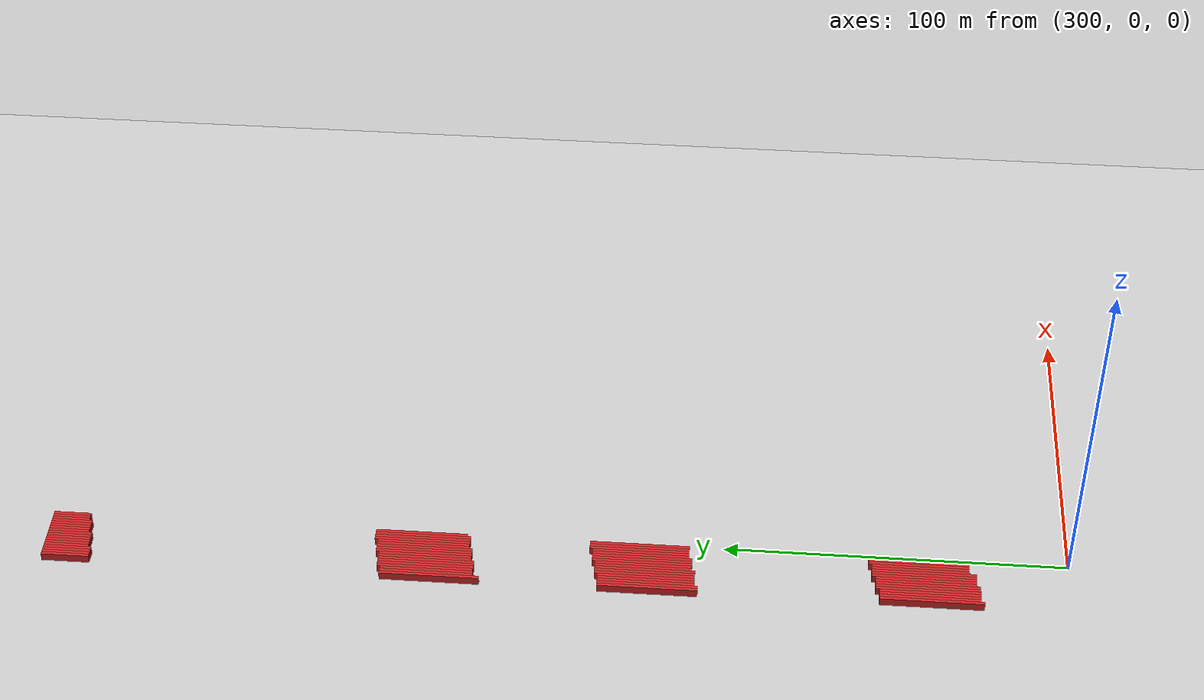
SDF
<sdf version="1.4">
 <world name="1_wall">
  <model name="ground_plane">
   <static>1</static>
   <link name="link">
    <collision name="collision">
     <geometry><plane><normal>0 0 1</normal><size>1000 1000</size></plane></geometry>
     <surface><friction><ode><mu>100</mu><mu2>50</mu2></ode></friction></surface>
    </collision>
    <visual name="visual">
     <cast_shadows>0</cast_shadows>
     <geometry><plane><normal>0 0 1</normal><size>10000 10000</size></plane></geometry>
     <material>
      <script><uri>file://media/materials/scripts/gazebo.material</uri><name>Gazebo/Grey</name></script>
     </material>
    </visual>
    <velocity_decay><linear>0</linear><angular>0</angular></velocity_decay>
   </link>
  </model>
  <model name="Wall_923">
   <static>1</static>
   <link name="Wall_923">
    <collision name="Wall_Collision_923">
     <geometry><box><size>29.0 1.0 2.5</size></box></geometry>
     <pose>0 0 1.25 0 -0 0</pose>
    </collision>
    <visual name="Wall_Visual_923">
     <pose>0 0 1.25 0 -0 0</pose>
     <geometry><box><size>29.0 1.0 2.5</size></box></geometry>
     <material>
      <script><uri>file://media/materials/scripts/gazebo.material</uri><name>Gazebo/Red</name></script>
     </material>
    </visual>
    <velocity_decay><linear>0</linear><angular>0</angular></velocity_decay>
    <pose>280.5 121.5 0 0 0 1.5707963267948966</pose>
   </link>
  </model>
  <model name="Wall_924">
   <static>1</static>
   <link name="Wall_924">
    <collision name="Wall_Collision_924">
     <geometry><box><size>29.0 1.0 2.5</size></box></geometry>
     <pose>0 0 1.25 0 -0 0</pose>
    </collision>
    <visual name="Wall_Visual_924">
     <pose>0 0 1.25 0 -0 0</pose>
     <geometry><box><size>29.0 1.0 2.5</size></box></geometry>
     <material>
      <script><uri>file://media/materials/scripts/gazebo.material</uri><name>Gazebo/Red</name></script>
     </material>
    </visual>
    <velocity_decay><linear>0</linear><angular>0</angular></velocity_decay>
    <pose>280.5 184.5 0 0 0 1.5707963267948966</pose>
   </link>
  </model>
  <model name="Wall_925">
   <static>1</static>
   <link name="Wall_925">
    <collision name="Wall_Collision_925">
     <geometry><box><size>14.0 1.0 2.5</size></box></geometry>
     <pose>0 0 1.25 0 -0 0</pose>
    </collision>
    <visual name="Wall_Visual_925">
     <pose>0 0 1.25 0 -0 0</pose>
     <geometry><box><size>14.0 1.0 2.5</size></box></geometry>
     <material>
      <script><uri>file://media/materials/scripts/gazebo.material</uri><name>Gazebo/Red</name></script>
     </material>
    </visual>
    <velocity_decay><linear>0</linear><angular>0</angular></velocity_decay>
    <pose>280.5 291.0 0 0 0 1.5707963267948966</pose>
   </link>
  </model>
  <model name="Wall_926">
   <static>1</static>
   <link name="Wall_926">
    <collision name="Wall_Collision_926">
     <geometry><box><size>30.0 1.0 2.5</size></box></geometry>
     <pose>0 0 1.25 0 -0 0</pose>
    </collision>
    <visual name="Wall_Visual_926">
     <pose>0 0 1.25 0 -0 0</pose>
     <geometry><box><size>30.0 1.0 2.5</size></box></geometry>
     <material>
      <script><uri>file://media/materials/scripts/gazebo.material</uri><name>Gazebo/Red</name></script>
     </material>
    </visual>
    <velocity_decay><linear>0</linear><angular>0</angular></velocity_decay>
    <pose>281.5 40.0 0 0 0 1.5707963267948966</pose>
   </link>
  </model>
  <model name="Wall_927">
   <static>1</static>
   <link name="Wall_927">
    <collision name="Wall_Collision_927">
     <geometry><box><size>29.0 1.0 2.5</size></box></geometry>
     <pose>0 0 1.25 0 -0 0</pose>
    </collision>
    <visual name="Wall_Visual_927">
     <pose>0 0 1.25 0 -0 0</pose>
     <geometry><box><size>29.0 1.0 2.5</size></box></geometry>
     <material>
      <script><uri>file://media/materials/scripts/gazebo.material</uri><name>Gazebo/Red</name></script>
     </material>
    </visual>
    <velocity_decay><linear>0</linear><angular>0</angular></velocity_decay>
    <pose>281.5 121.5 0 0 0 1.5707963267948966</pose>
   </link>
  </model>
  <model name="Wall_928">
   <static>1</static>
   <link name="Wall_928">
    <collision name="Wall_Collision_928">
     <geometry><box><size>27.0 1.0 2.5</size></box></geometry>
     <pose>0 0 1.25 0 -0 0</pose>
    </collision>
    <visual name="Wall_Visual_928">
     <pose>0 0 1.25 0 -0 0</pose>
     <geometry><box><size>27.0 1.0 2.5</size></box></geometry>
     <material>
      <script><uri>file://media/materials/scripts/gazebo.material</uri><name>Gazebo/Red</name></script>
     </material>
    </visual>
    <velocity_decay><linear>0</linear><angular>0</angular></velocity_decay>
    <pose>281.5 185.5 0 0 0 1.5707963267948966</pose>
   </link>
  </model>
  <model name="Wall_929">
   <static>1</static>
   <link name="Wall_929">
    <collision name="Wall_Collision_929">
     <geometry><box><size>14.0 1.0 2.5</size></box></geometry>
     <pose>0 0 1.25 0 -0 0</pose>
    </collision>
    <visual name="Wall_Visual_929">
     <pose>0 0 1.25 0 -0 0</pose>
     <geometry><box><size>14.0 1.0 2.5</size></box></geometry>
     <material>
      <script><uri>file://media/materials/scripts/gazebo.material</uri><name>Gazebo/Red</name></script>
     </material>
    </visual>
    <velocity_decay><linear>0</linear><angular>0</angular></velocity_decay>
    <pose>281.5 291.0 0 0 0 1.5707963267948966</pose>
   </link>
  </model>
  <model name="Wall_930">
   <static>1</static>
   <link name="Wall_930">
    <collision name="Wall_Collision_930">
     <geometry><box><size>29.0 1.0 2.5</size></box></geometry>
     <pose>0 0 1.25 0 -0 0</pose>
    </collision>
    <visual name="Wall_Visual_930">
     <pose>0 0 1.25 0 -0 0</pose>
     <geometry><box><size>29.0 1.0 2.5</size></box></geometry>
     <material>
      <script><uri>file://media/materials/scripts/gazebo.material</uri><name>Gazebo/Red</name></script>
     </material>
    </visual>
    <velocity_decay><linear>0</linear><angular>0</angular></velocity_decay>
    <pose>282.5 40.5 0 0 0 1.5707963267948966</pose>
   </link>
  </model>
  <model name="Wall_931">
   <static>1</static>
   <link name="Wall_931">
    <collision name="Wall_Collision_931">
     <geometry><box><size>28.0 1.0 2.5</size></box></geometry>
     <pose>0 0 1.25 0 -0 0</pose>
    </collision>
    <visual name="Wall_Visual_931">
     <pose>0 0 1.25 0 -0 0</pose>
     <geometry><box><size>28.0 1.0 2.5</size></box></geometry>
     <material>
      <script><uri>file://media/materials/scripts/gazebo.material</uri><name>Gazebo/Red</name></script>
     </material>
    </visual>
    <velocity_decay><linear>0</linear><angular>0</angular></velocity_decay>
    <pose>282.5 122.0 0 0 0 1.5707963267948966</pose>
   </link>
  </model>
  <model name="Wall_932">
   <static>1</static>
   <link name="Wall_932">
    <collision name="Wall_Collision_932">
     <geometry><box><size>27.0 1.0 2.5</size></box></geometry>
     <pose>0 0 1.25 0 -0 0</pose>
    </collision>
    <visual name="Wall_Visual_932">
     <pose>0 0 1.25 0 -0 0</pose>
     <geometry><box><size>27.0 1.0 2.5</size></box></geometry>
     <material>
      <script><uri>file://media/materials/scripts/gazebo.material</uri><name>Gazebo/Red</name></script>
     </material>
    </visual>
    <velocity_decay><linear>0</linear><angular>0</angular></velocity_decay>
    <pose>282.5 185.5 0 0 0 1.5707963267948966</pose>
   </link>
  </model>
  <model name="Wall_933">
   <static>1</static>
   <link name="Wall_933">
    <collision name="Wall_Collision_933">
     <geometry><box><size>14.0 1.0 2.5</size></box></geometry>
     <pose>0 0 1.25 0 -0 0</pose>
    </collision>
    <visual name="Wall_Visual_933">
     <pose>0 0 1.25 0 -0 0</pose>
     <geometry><box><size>14.0 1.0 2.5</size></box></geometry>
     <material>
      <script><uri>file://media/materials/scripts/gazebo.material</uri><name>Gazebo/Red</name></script>
     </material>
    </visual>
    <velocity_decay><linear>0</linear><angular>0</angular></velocity_decay>
    <pose>282.5 291.0 0 0 0 1.5707963267948966</pose>
   </link>
  </model>
  <model name="Wall_934">
   <static>1</static>
   <link name="Wall_934">
    <collision name="Wall_Collision_934">
     <geometry><box><size>29.0 1.0 2.5</size></box></geometry>
     <pose>0 0 1.25 0 -0 0</pose>
    </collision>
    <visual name="Wall_Visual_934">
     <pose>0 0 1.25 0 -0 0</pose>
     <geometry><box><size>29.0 1.0 2.5</size></box></geometry>
     <material>
      <script><uri>file://media/materials/scripts/gazebo.material</uri><name>Gazebo/Red</name></script>
     </material>
    </visual>
    <velocity_decay><linear>0</linear><angular>0</angular></velocity_decay>
    <pose>283.5 40.5 0 0 0 1.5707963267948966</pose>
   </link>
  </model>
  <model name="Wall_935">
   <static>1</static>
   <link name="Wall_935">
    <collision name="Wall_Collision_935">
     <geometry><box><size>28.0 1.0 2.5</size></box></geometry>
     <pose>0 0 1.25 0 -0 0</pose>
    </collision>
    <visual name="Wall_Visual_935">
     <pose>0 0 1.25 0 -0 0</pose>
     <geometry><box><size>28.0 1.0 2.5</size></box></geometry>
     <material>
      <script><uri>file://media/materials/scripts/gazebo.material</uri><name>Gazebo/Red</name></script>
     </material>
    </visual>
    <velocity_decay><linear>0</linear><angular>0</angular></velocity_decay>
    <pose>283.5 122.0 0 0 0 1.5707963267948966</pose>
   </link>
  </model>
  <model name="Wall_936">
   <static>1</static>
   <link name="Wall_936">
    <collision name="Wall_Collision_936">
     <geometry><box><size>28.0 1.0 2.5</size></box></geometry>
     <pose>0 0 1.25 0 -0 0</pose>
    </collision>
    <visual name="Wall_Visual_936">
     <pose>0 0 1.25 0 -0 0</pose>
     <geometry><box><size>28.0 1.0 2.5</size></box></geometry>
     <material>
      <script><uri>file://media/materials/scripts/gazebo.material</uri><name>Gazebo/Red</name></script>
     </material>
    </visual>
    <velocity_decay><linear>0</linear><angular>0</angular></velocity_decay>
    <pose>283.5 186.0 0 0 0 1.5707963267948966</pose>
   </link>
  </model>
  <model name="Wall_937">
   <static>1</static>
   <link name="Wall_937">
    <collision name="Wall_Collision_937">
     <geometry><box><size>14.0 1.0 2.5</size></box></geometry>
     <pose>0 0 1.25 0 -0 0</pose>
    </collision>
    <visual name="Wall_Visual_937">
     <pose>0 0 1.25 0 -0 0</pose>
     <geometry><box><size>14.0 1.0 2.5</size></box></geometry>
     <material>
      <script><uri>file://media/materials/scripts/gazebo.material</uri><name>Gazebo/Red</name></script>
     </material>
    </visual>
    <velocity_decay><linear>0</linear><angular>0</angular></velocity_decay>
    <pose>283.5 291.0 0 0 0 1.5707963267948966</pose>
   </link>
  </model>
  <model name="Wall_938">
   <static>1</static>
   <link name="Wall_938">
    <collision name="Wall_Collision_938">
     <geometry><box><size>29.0 1.0 2.5</size></box></geometry>
     <pose>0 0 1.25 0 -0 0</pose>
    </collision>
    <visual name="Wall_Visual_938">
     <pose>0 0 1.25 0 -0 0</pose>
     <geometry><box><size>29.0 1.0 2.5</size></box></geometry>
     <material>
      <script><uri>file://media/materials/scripts/gazebo.material</uri><name>Gazebo/Red</name></script>
     </material>
    </visual>
    <velocity_decay><linear>0</linear><angular>0</angular></velocity_decay>
    <pose>284.5 40.5 0 0 0 1.5707963267948966</pose>
   </link>
  </model>
  <model name="Wall_939">
   <static>1</static>
   <link name="Wall_939">
    <collision name="Wall_Collision_939">
     <geometry><box><size>28.0 1.0 2.5</size></box></geometry>
     <pose>0 0 1.25 0 -0 0</pose>
    </collision>
    <visual name="Wall_Visual_939">
     <pose>0 0 1.25 0 -0 0</pose>
     <geometry><box><size>28.0 1.0 2.5</size></box></geometry>
     <material>
      <script><uri>file://media/materials/scripts/gazebo.material</uri><name>Gazebo/Red</name></script>
     </material>
    </visual>
    <velocity_decay><linear>0</linear><angular>0</angular></velocity_decay>
    <pose>284.5 122.0 0 0 0 1.5707963267948966</pose>
   </link>
  </model>
  <model name="Wall_940">
   <static>1</static>
   <link name="Wall_940">
    <collision name="Wall_Collision_940">
     <geometry><box><size>28.0 1.0 2.5</size></box></geometry>
     <pose>0 0 1.25 0 -0 0</pose>
    </collision>
    <visual name="Wall_Visual_940">
     <pose>0 0 1.25 0 -0 0</pose>
     <geometry><box><size>28.0 1.0 2.5</size></box></geometry>
     <material>
      <script><uri>file://media/materials/scripts/gazebo.material</uri><name>Gazebo/Red</name></script>
     </material>
    </visual>
    <velocity_decay><linear>0</linear><angular>0</angular></velocity_decay>
    <pose>284.5 186.0 0 0 0 1.5707963267948966</pose>
   </link>
  </model>
  <model name="Wall_941">
   <static>1</static>
   <link name="Wall_941">
    <collision name="Wall_Collision_941">
     <geometry><box><size>13.0 1.0 2.5</size></box></geometry>
     <pose>0 0 1.25 0 -0 0</pose>
    </collision>
    <visual name="Wall_Visual_941">
     <pose>0 0 1.25 0 -0 0</pose>
     <geometry><box><size>13.0 1.0 2.5</size></box></geometry>
     <material>
      <script><uri>file://media/materials/scripts/gazebo.material</uri><name>Gazebo/Red</name></script>
     </material>
    </visual>
    <velocity_decay><linear>0</linear><angular>0</angular></velocity_decay>
    <pose>284.5 291.5 0 0 0 1.5707963267948966</pose>
   </link>
  </model>
  <model name="Wall_942">
   <static>1</static>
   <link name="Wall_942">
    <collision name="Wall_Collision_942">
     <geometry><box><size>30.0 1.0 2.5</size></box></geometry>
     <pose>0 0 1.25 0 -0 0</pose>
    </collision>
    <visual name="Wall_Visual_942">
     <pose>0 0 1.25 0 -0 0</pose>
     <geometry><box><size>30.0 1.0 2.5</size></box></geometry>
     <material>
      <script><uri>file://media/materials/scripts/gazebo.material</uri><name>Gazebo/Red</name></script>
     </material>
    </visual>
    <velocity_decay><linear>0</linear><angular>0</angular></velocity_decay>
    <pose>285.5 41.0 0 0 0 1.5707963267948966</pose>
   </link>
  </model>
  <model name="Wall_943">
   <static>1</static>
   <link name="Wall_943">
    <collision name="Wall_Collision_943">
     <geometry><box><size>29.0 1.0 2.5</size></box></geometry>
     <pose>0 0 1.25 0 -0 0</pose>
    </collision>
    <visual name="Wall_Visual_943">
     <pose>0 0 1.25 0 -0 0</pose>
     <geometry><box><size>29.0 1.0 2.5</size></box></geometry>
     <material>
      <script><uri>file://media/materials/scripts/gazebo.material</uri><name>Gazebo/Red</name></script>
     </material>
    </visual>
    <velocity_decay><linear>0</linear><angular>0</angular></velocity_decay>
    <pose>285.5 122.5 0 0 0 1.5707963267948966</pose>
   </link>
  </model>
  <model name="Wall_944">
   <static>1</static>
   <link name="Wall_944">
    <collision name="Wall_Collision_944">
     <geometry><box><size>28.0 1.0 2.5</size></box></geometry>
     <pose>0 0 1.25 0 -0 0</pose>
    </collision>
    <visual name="Wall_Visual_944">
     <pose>0 0 1.25 0 -0 0</pose>
     <geometry><box><size>28.0 1.0 2.5</size></box></geometry>
     <material>
      <script><uri>file://media/materials/scripts/gazebo.material</uri><name>Gazebo/Red</name></script>
     </material>
    </visual>
    <velocity_decay><linear>0</linear><angular>0</angular></velocity_decay>
    <pose>285.5 186.0 0 0 0 1.5707963267948966</pose>
   </link>
  </model>
  <model name="Wall_945">
   <static>1</static>
   <link name="Wall_945">
    <collision name="Wall_Collision_945">
     <geometry><box><size>13.0 1.0 2.5</size></box></geometry>
     <pose>0 0 1.25 0 -0 0</pose>
    </collision>
    <visual name="Wall_Visual_945">
     <pose>0 0 1.25 0 -0 0</pose>
     <geometry><box><size>13.0 1.0 2.5</size></box></geometry>
     <material>
      <script><uri>file://media/materials/scripts/gazebo.material</uri><name>Gazebo/Red</name></script>
     </material>
    </visual>
    <velocity_decay><linear>0</linear><angular>0</angular></velocity_decay>
    <pose>285.5 291.5 0 0 0 1.5707963267948966</pose>
   </link>
  </model>
  <model name="Wall_946">
   <static>1</static>
   <link name="Wall_946">
    <collision name="Wall_Collision_946">
     <geometry><box><size>30.0 1.0 2.5</size></box></geometry>
     <pose>0 0 1.25 0 -0 0</pose>
    </collision>
    <visual name="Wall_Visual_946">
     <pose>0 0 1.25 0 -0 0</pose>
     <geometry><box><size>30.0 1.0 2.5</size></box></geometry>
     <material>
      <script><uri>file://media/materials/scripts/gazebo.material</uri><name>Gazebo/Red</name></script>
     </material>
    </visual>
    <velocity_decay><linear>0</linear><angular>0</angular></velocity_decay>
    <pose>286.5 41.0 0 0 0 1.5707963267948966</pose>
   </link>
  </model>
  <model name="Wall_947">
   <static>1</static>
   <link name="Wall_947">
    <collision name="Wall_Collision_947">
     <geometry><box><size>29.0 1.0 2.5</size></box></geometry>
     <pose>0 0 1.25 0 -0 0</pose>
    </collision>
    <visual name="Wall_Visual_947">
     <pose>0 0 1.25 0 -0 0</pose>
     <geometry><box><size>29.0 1.0 2.5</size></box></geometry>
     <material>
      <script><uri>file://media/materials/scripts/gazebo.material</uri><name>Gazebo/Red</name></script>
     </material>
    </visual>
    <velocity_decay><linear>0</linear><angular>0</angular></velocity_decay>
    <pose>286.5 122.5 0 0 0 1.5707963267948966</pose>
   </link>
  </model>
  <model name="Wall_948">
   <static>1</static>
   <link name="Wall_948">
    <collision name="Wall_Collision_948">
     <geometry><box><size>28.0 1.0 2.5</size></box></geometry>
     <pose>0 0 1.25 0 -0 0</pose>
    </collision>
    <visual name="Wall_Visual_948">
     <pose>0 0 1.25 0 -0 0</pose>
     <geometry><box><size>28.0 1.0 2.5</size></box></geometry>
     <material>
      <script><uri>file://media/materials/scripts/gazebo.material</uri><name>Gazebo/Red</name></script>
     </material>
    </visual>
    <velocity_decay><linear>0</linear><angular>0</angular></velocity_decay>
    <pose>286.5 186.0 0 0 0 1.5707963267948966</pose>
   </link>
  </model>
  <model name="Wall_949">
   <static>1</static>
   <link name="Wall_949">
    <collision name="Wall_Collision_949">
     <geometry><box><size>13.0 1.0 2.5</size></box></geometry>
     <pose>0 0 1.25 0 -0 0</pose>
    </collision>
    <visual name="Wall_Visual_949">
     <pose>0 0 1.25 0 -0 0</pose>
     <geometry><box><size>13.0 1.0 2.5</size></box></geometry>
     <material>
      <script><uri>file://media/materials/scripts/gazebo.material</uri><name>Gazebo/Red</name></script>
     </material>
    </visual>
    <velocity_decay><linear>0</linear><angular>0</angular></velocity_decay>
    <pose>286.5 291.5 0 0 0 1.5707963267948966</pose>
   </link>
  </model>
  <model name="Wall_950">
   <static>1</static>
   <link name="Wall_950">
    <collision name="Wall_Collision_950">
     <geometry><box><size>30.0 1.0 2.5</size></box></geometry>
     <pose>0 0 1.25 0 -0 0</pose>
    </collision>
    <visual name="Wall_Visual_950">
     <pose>0 0 1.25 0 -0 0</pose>
     <geometry><box><size>30.0 1.0 2.5</size></box></geometry>
     <material>
      <script><uri>file://media/materials/scripts/gazebo.material</uri><name>Gazebo/Red</name></script>
     </material>
    </visual>
    <velocity_decay><linear>0</linear><angular>0</angular></velocity_decay>
    <pose>287.5 41.0 0 0 0 1.5707963267948966</pose>
   </link>
  </model>
  <model name="Wall_951">
   <static>1</static>
   <link name="Wall_951">
    <collision name="Wall_Collision_951">
     <geometry><box><size>29.0 1.0 2.5</size></box></geometry>
     <pose>0 0 1.25 0 -0 0</pose>
    </collision>
    <visual name="Wall_Visual_951">
     <pose>0 0 1.25 0 -0 0</pose>
     <geometry><box><size>29.0 1.0 2.5</size></box></geometry>
     <material>
      <script><uri>file://media/materials/scripts/gazebo.material</uri><name>Gazebo/Red</name></script>
     </material>
    </visual>
    <velocity_decay><linear>0</linear><angular>0</angular></velocity_decay>
    <pose>287.5 122.5 0 0 0 1.5707963267948966</pose>
   </link>
  </model>
  <model name="Wall_952">
   <static>1</static>
   <link name="Wall_952">
    <collision name="Wall_Collision_952">
     <geometry><box><size>27.0 1.0 2.5</size></box></geometry>
     <pose>0 0 1.25 0 -0 0</pose>
    </collision>
    <visual name="Wall_Visual_952">
     <pose>0 0 1.25 0 -0 0</pose>
     <geometry><box><size>27.0 1.0 2.5</size></box></geometry>
     <material>
      <script><uri>file://media/materials/scripts/gazebo.material</uri><name>Gazebo/Red</name></script>
     </material>
    </visual>
    <velocity_decay><linear>0</linear><angular>0</angular></velocity_decay>
    <pose>287.5 186.5 0 0 0 1.5707963267948966</pose>
   </link>
  </model>
  <model name="Wall_953">
   <static>1</static>
   <link name="Wall_953">
    <collision name="Wall_Collision_953">
     <geometry><box><size>13.0 1.0 2.5</size></box></geometry>
     <pose>0 0 1.25 0 -0 0</pose>
    </collision>
    <visual name="Wall_Visual_953">
     <pose>0 0 1.25 0 -0 0</pose>
     <geometry><box><size>13.0 1.0 2.5</size></box></geometry>
     <material>
      <script><uri>file://media/materials/scripts/gazebo.material</uri><name>Gazebo/Red</name></script>
     </material>
    </visual>
    <velocity_decay><linear>0</linear><angular>0</angular></velocity_decay>
    <pose>287.5 291.5 0 0 0 1.5707963267948966</pose>
   </link>
  </model>
  <model name="Wall_954">
   <static>1</static>
   <link name="Wall_954">
    <collision name="Wall_Collision_954">
     <geometry><box><size>29.0 1.0 2.5</size></box></geometry>
     <pose>0 0 1.25 0 -0 0</pose>
    </collision>
    <visual name="Wall_Visual_954">
     <pose>0 0 1.25 0 -0 0</pose>
     <geometry><box><size>29.0 1.0 2.5</size></box></geometry>
     <material>
      <script><uri>file://media/materials/scripts/gazebo.material</uri><name>Gazebo/Red</name></script>
     </material>
    </visual>
    <velocity_decay><linear>0</linear><angular>0</angular></velocity_decay>
    <pose>288.5 41.5 0 0 0 1.5707963267948966</pose>
   </link>
  </model>
  <model name="Wall_955">
   <static>1</static>
   <link name="Wall_955">
    <collision name="Wall_Collision_955">
     <geometry><box><size>28.0 1.0 2.5</size></box></geometry>
     <pose>0 0 1.25 0 -0 0</pose>
    </collision>
    <visual name="Wall_Visual_955">
     <pose>0 0 1.25 0 -0 0</pose>
     <geometry><box><size>28.0 1.0 2.5</size></box></geometry>
     <material>
      <script><uri>file://media/materials/scripts/gazebo.material</uri><name>Gazebo/Red</name></script>
     </material>
    </visual>
    <velocity_decay><linear>0</linear><angular>0</angular></velocity_decay>
    <pose>288.5 123.0 0 0 0 1.5707963267948966</pose>
   </link>
  </model>
  <model name="Wall_956">
   <static>1</static>
   <link name="Wall_956">
    <collision name="Wall_Collision_956">
     <geometry><box><size>27.0 1.0 2.5</size></box></geometry>
     <pose>0 0 1.25 0 -0 0</pose>
    </collision>
    <visual name="Wall_Visual_956">
     <pose>0 0 1.25 0 -0 0</pose>
     <geometry><box><size>27.0 1.0 2.5</size></box></geometry>
     <material>
      <script><uri>file://media/materials/scripts/gazebo.material</uri><name>Gazebo/Red</name></script>
     </material>
    </visual>
    <velocity_decay><linear>0</linear><angular>0</angular></velocity_decay>
    <pose>288.5 186.5 0 0 0 1.5707963267948966</pose>
   </link>
  </model>
  <model name="Wall_957">
   <static>1</static>
   <link name="Wall_957">
    <collision name="Wall_Collision_957">
     <geometry><box><size>13.0 1.0 2.5</size></box></geometry>
     <pose>0 0 1.25 0 -0 0</pose>
    </collision>
    <visual name="Wall_Visual_957">
     <pose>0 0 1.25 0 -0 0</pose>
     <geometry><box><size>13.0 1.0 2.5</size></box></geometry>
     <material>
      <script><uri>file://media/materials/scripts/gazebo.material</uri><name>Gazebo/Red</name></script>
     </material>
    </visual>
    <velocity_decay><linear>0</linear><angular>0</angular></velocity_decay>
    <pose>288.5 291.5 0 0 0 1.5707963267948966</pose>
   </link>
  </model>
  <model name="Wall_958">
   <static>1</static>
   <link name="Wall_958">
    <collision name="Wall_Collision_958">
     <geometry><box><size>29.0 1.0 2.5</size></box></geometry>
     <pose>0 0 1.25 0 -0 0</pose>
    </collision>
    <visual name="Wall_Visual_958">
     <pose>0 0 1.25 0 -0 0</pose>
     <geometry><box><size>29.0 1.0 2.5</size></box></geometry>
     <material>
      <script><uri>file://media/materials/scripts/gazebo.material</uri><name>Gazebo/Red</name></script>
     </material>
    </visual>
    <velocity_decay><linear>0</linear><angular>0</angular></velocity_decay>
    <pose>289.5 41.5 0 0 0 1.5707963267948966</pose>
   </link>
  </model>
  <model name="Wall_959">
   <static>1</static>
   <link name="Wall_959">
    <collision name="Wall_Collision_959">
     <geometry><box><size>28.0 1.0 2.5</size></box></geometry>
     <pose>0 0 1.25 0 -0 0</pose>
    </collision>
    <visual name="Wall_Visual_959">
     <pose>0 0 1.25 0 -0 0</pose>
     <geometry><box><size>28.0 1.0 2.5</size></box></geometry>
     <material>
      <script><uri>file://media/materials/scripts/gazebo.material</uri><name>Gazebo/Red</name></script>
     </material>
    </visual>
    <velocity_decay><linear>0</linear><angular>0</angular></velocity_decay>
    <pose>289.5 123.0 0 0 0 1.5707963267948966</pose>
   </link>
  </model>
  <model name="Wall_960">
   <static>1</static>
   <link name="Wall_960">
    <collision name="Wall_Collision_960">
     <geometry><box><size>28.0 1.0 2.5</size></box></geometry>
     <pose>0 0 1.25 0 -0 0</pose>
    </collision>
    <visual name="Wall_Visual_960">
     <pose>0 0 1.25 0 -0 0</pose>
     <geometry><box><size>28.0 1.0 2.5</size></box></geometry>
     <material>
      <script><uri>file://media/materials/scripts/gazebo.material</uri><name>Gazebo/Red</name></script>
     </material>
    </visual>
    <velocity_decay><linear>0</linear><angular>0</angular></velocity_decay>
    <pose>289.5 187.0 0 0 0 1.5707963267948966</pose>
   </link>
  </model>
  <model name="Wall_961">
   <static>1</static>
   <link name="Wall_961">
    <collision name="Wall_Collision_961">
     <geometry><box><size>13.0 1.0 2.5</size></box></geometry>
     <pose>0 0 1.25 0 -0 0</pose>
    </collision>
    <visual name="Wall_Visual_961">
     <pose>0 0 1.25 0 -0 0</pose>
     <geometry><box><size>13.0 1.0 2.5</size></box></geometry>
     <material>
      <script><uri>file://media/materials/scripts/gazebo.material</uri><name>Gazebo/Red</name></script>
     </material>
    </visual>
    <velocity_decay><linear>0</linear><angular>0</angular></velocity_decay>
    <pose>289.5 291.5 0 0 0 1.5707963267948966</pose>
   </link>
  </model>
  <model name="Wall_962">
   <static>1</static>
   <link name="Wall_962">
    <collision name="Wall_Collision_962">
     <geometry><box><size>30.0 1.0 2.5</size></box></geometry>
     <pose>0 0 1.25 0 -0 0</pose>
    </collision>
    <visual name="Wall_Visual_962">
     <pose>0 0 1.25 0 -0 0</pose>
     <geometry><box><size>30.0 1.0 2.5</size></box></geometry>
     <material>
      <script><uri>file://media/materials/scripts/gazebo.material</uri><name>Gazebo/Red</name></script>
     </material>
    </visual>
    <velocity_decay><linear>0</linear><angular>0</angular></velocity_decay>
    <pose>290.5 42.0 0 0 0 1.5707963267948966</pose>
   </link>
  </model>
  <model name="Wall_963">
   <static>1</static>
   <link name="Wall_963">
    <collision name="Wall_Collision_963">
     <geometry><box><size>29.0 1.0 2.5</size></box></geometry>
     <pose>0 0 1.25 0 -0 0</pose>
    </collision>
    <visual name="Wall_Visual_963">
     <pose>0 0 1.25 0 -0 0</pose>
     <geometry><box><size>29.0 1.0 2.5</size></box></geometry>
     <material>
      <script><uri>file://media/materials/scripts/gazebo.material</uri><name>Gazebo/Red</name></script>
     </material>
    </visual>
    <velocity_decay><linear>0</linear><angular>0</angular></velocity_decay>
    <pose>290.5 123.5 0 0 0 1.5707963267948966</pose>
   </link>
  </model>
  <model name="Wall_964">
   <static>1</static>
   <link name="Wall_964">
    <collision name="Wall_Collision_964">
     <geometry><box><size>28.0 1.0 2.5</size></box></geometry>
     <pose>0 0 1.25 0 -0 0</pose>
    </collision>
    <visual name="Wall_Visual_964">
     <pose>0 0 1.25 0 -0 0</pose>
     <geometry><box><size>28.0 1.0 2.5</size></box></geometry>
     <material>
      <script><uri>file://media/materials/scripts/gazebo.material</uri><name>Gazebo/Red</name></script>
     </material>
    </visual>
    <velocity_decay><linear>0</linear><angular>0</angular></velocity_decay>
    <pose>290.5 187.0 0 0 0 1.5707963267948966</pose>
   </link>
  </model>
  <model name="Wall_965">
   <static>1</static>
   <link name="Wall_965">
    <collision name="Wall_Collision_965">
     <geometry><box><size>12.0 1.0 2.5</size></box></geometry>
     <pose>0 0 1.25 0 -0 0</pose>
    </collision>
    <visual name="Wall_Visual_965">
     <pose>0 0 1.25 0 -0 0</pose>
     <geometry><box><size>12.0 1.0 2.5</size></box></geometry>
     <material>
      <script><uri>file://media/materials/scripts/gazebo.material</uri><name>Gazebo/Red</name></script>
     </material>
    </visual>
    <velocity_decay><linear>0</linear><angular>0</angular></velocity_decay>
    <pose>290.5 292.0 0 0 0 1.5707963267948966</pose>
   </link>
  </model>
  <model name="Wall_966">
   <static>1</static>
   <link name="Wall_966">
    <collision name="Wall_Collision_966">
     <geometry><box><size>30.0 1.0 2.5</size></box></geometry>
     <pose>0 0 1.25 0 -0 0</pose>
    </collision>
    <visual name="Wall_Visual_966">
     <pose>0 0 1.25 0 -0 0</pose>
     <geometry><box><size>30.0 1.0 2.5</size></box></geometry>
     <material>
      <script><uri>file://media/materials/scripts/gazebo.material</uri><name>Gazebo/Red</name></script>
     </material>
    </visual>
    <velocity_decay><linear>0</linear><angular>0</angular></velocity_decay>
    <pose>291.5 42.0 0 0 0 1.5707963267948966</pose>
   </link>
  </model>
  <model name="Wall_967">
   <static>1</static>
   <link name="Wall_967">
    <collision name="Wall_Collision_967">
     <geometry><box><size>29.0 1.0 2.5</size></box></geometry>
     <pose>0 0 1.25 0 -0 0</pose>
    </collision>
    <visual name="Wall_Visual_967">
     <pose>0 0 1.25 0 -0 0</pose>
     <geometry><box><size>29.0 1.0 2.5</size></box></geometry>
     <material>
      <script><uri>file://media/materials/scripts/gazebo.material</uri><name>Gazebo/Red</name></script>
     </material>
    </visual>
    <velocity_decay><linear>0</linear><angular>0</angular></velocity_decay>
    <pose>291.5 123.5 0 0 0 1.5707963267948966</pose>
   </link>
  </model>
  <model name="Wall_968">
   <static>1</static>
   <link name="Wall_968">
    <collision name="Wall_Collision_968">
     <geometry><box><size>28.0 1.0 2.5</size></box></geometry>
     <pose>0 0 1.25 0 -0 0</pose>
    </collision>
    <visual name="Wall_Visual_968">
     <pose>0 0 1.25 0 -0 0</pose>
     <geometry><box><size>28.0 1.0 2.5</size></box></geometry>
     <material>
      <script><uri>file://media/materials/scripts/gazebo.material</uri><name>Gazebo/Red</name></script>
     </material>
    </visual>
    <velocity_decay><linear>0</linear><angular>0</angular></velocity_decay>
    <pose>291.5 187.0 0 0 0 1.5707963267948966</pose>
   </link>
  </model>
  <model name="Wall_969">
   <static>1</static>
   <link name="Wall_969">
    <collision name="Wall_Collision_969">
     <geometry><box><size>12.0 1.0 2.5</size></box></geometry>
     <pose>0 0 1.25 0 -0 0</pose>
    </collision>
    <visual name="Wall_Visual_969">
     <pose>0 0 1.25 0 -0 0</pose>
     <geometry><box><size>12.0 1.0 2.5</size></box></geometry>
     <material>
      <script><uri>file://media/materials/scripts/gazebo.material</uri><name>Gazebo/Red</name></script>
     </material>
    </visual>
    <velocity_decay><linear>0</linear><angular>0</angular></velocity_decay>
    <pose>291.5 292.0 0 0 0 1.5707963267948966</pose>
   </link>
  </model>
  <model name="Wall_970">
   <static>1</static>
   <link name="Wall_970">
    <collision name="Wall_Collision_970">
     <geometry><box><size>30.0 1.0 2.5</size></box></geometry>
     <pose>0 0 1.25 0 -0 0</pose>
    </collision>
    <visual name="Wall_Visual_970">
     <pose>0 0 1.25 0 -0 0</pose>
     <geometry><box><size>30.0 1.0 2.5</size></box></geometry>
     <material>
      <script><uri>file://media/materials/scripts/gazebo.material</uri><name>Gazebo/Red</name></script>
     </material>
    </visual>
    <velocity_decay><linear>0</linear><angular>0</angular></velocity_decay>
    <pose>292.5 42.0 0 0 0 1.5707963267948966</pose>
   </link>
  </model>
  <model name="Wall_971">
   <static>1</static>
   <link name="Wall_971">
    <collision name="Wall_Collision_971">
     <geometry><box><size>29.0 1.0 2.5</size></box></geometry>
     <pose>0 0 1.25 0 -0 0</pose>
    </collision>
    <visual name="Wall_Visual_971">
     <pose>0 0 1.25 0 -0 0</pose>
     <geometry><box><size>29.0 1.0 2.5</size></box></geometry>
     <material>
      <script><uri>file://media/materials/scripts/gazebo.material</uri><name>Gazebo/Red</name></script>
     </material>
    </visual>
    <velocity_decay><linear>0</linear><angular>0</angular></velocity_decay>
    <pose>292.5 123.5 0 0 0 1.5707963267948966</pose>
   </link>
  </model>
  <model name="Wall_972">
   <static>1</static>
   <link name="Wall_972">
    <collision name="Wall_Collision_972">
     <geometry><box><size>27.0 1.0 2.5</size></box></geometry>
     <pose>0 0 1.25 0 -0 0</pose>
    </collision>
    <visual name="Wall_Visual_972">
     <pose>0 0 1.25 0 -0 0</pose>
     <geometry><box><size>27.0 1.0 2.5</size></box></geometry>
     <material>
      <script><uri>file://media/materials/scripts/gazebo.material</uri><name>Gazebo/Red</name></script>
     </material>
    </visual>
    <velocity_decay><linear>0</linear><angular>0</angular></velocity_decay>
    <pose>292.5 187.5 0 0 0 1.5707963267948966</pose>
   </link>
  </model>
  <model name="Wall_973">
   <static>1</static>
   <link name="Wall_973">
    <collision name="Wall_Collision_973">
     <geometry><box><size>12.0 1.0 2.5</size></box></geometry>
     <pose>0 0 1.25 0 -0 0</pose>
    </collision>
    <visual name="Wall_Visual_973">
     <pose>0 0 1.25 0 -0 0</pose>
     <geometry><box><size>12.0 1.0 2.5</size></box></geometry>
     <material>
      <script><uri>file://media/materials/scripts/gazebo.material</uri><name>Gazebo/Red</name></script>
     </material>
    </visual>
    <velocity_decay><linear>0</linear><angular>0</angular></velocity_decay>
    <pose>292.5 292.0 0 0 0 1.5707963267948966</pose>
   </link>
  </model>
  <model name="Wall_974">
   <static>1</static>
   <link name="Wall_974">
    <collision name="Wall_Collision_974">
     <geometry><box><size>28.0 1.0 2.5</size></box></geometry>
     <pose>0 0 1.25 0 -0 0</pose>
    </collision>
    <visual name="Wall_Visual_974">
     <pose>0 0 1.25 0 -0 0</pose>
     <geometry><box><size>28.0 1.0 2.5</size></box></geometry>
     <material>
      <script><uri>file://media/materials/scripts/gazebo.material</uri><name>Gazebo/Red</name></script>
     </material>
    </visual>
    <velocity_decay><linear>0</linear><angular>0</angular></velocity_decay>
    <pose>293.5 43.0 0 0 0 1.5707963267948966</pose>
   </link>
  </model>
  <model name="Wall_975">
   <static>1</static>
   <link name="Wall_975">
    <collision name="Wall_Collision_975">
     <geometry><box><size>28.0 1.0 2.5</size></box></geometry>
     <pose>0 0 1.25 0 -0 0</pose>
    </collision>
    <visual name="Wall_Visual_975">
     <pose>0 0 1.25 0 -0 0</pose>
     <geometry><box><size>28.0 1.0 2.5</size></box></geometry>
     <material>
      <script><uri>file://media/materials/scripts/gazebo.material</uri><name>Gazebo/Red</name></script>
     </material>
    </visual>
    <velocity_decay><linear>0</linear><angular>0</angular></velocity_decay>
    <pose>293.5 124.0 0 0 0 1.5707963267948966</pose>
   </link>
  </model>
  <model name="Wall_976">
   <static>1</static>
   <link name="Wall_976">
    <collision name="Wall_Collision_976">
     <geometry><box><size>27.0 1.0 2.5</size></box></geometry>
     <pose>0 0 1.25 0 -0 0</pose>
    </collision>
    <visual name="Wall_Visual_976">
     <pose>0 0 1.25 0 -0 0</pose>
     <geometry><box><size>27.0 1.0 2.5</size></box></geometry>
     <material>
      <script><uri>file://media/materials/scripts/gazebo.material</uri><name>Gazebo/Red</name></script>
     </material>
    </visual>
    <velocity_decay><linear>0</linear><angular>0</angular></velocity_decay>
    <pose>293.5 187.5 0 0 0 1.5707963267948966</pose>
   </link>
  </model>
  <model name="Wall_977">
   <static>1</static>
   <link name="Wall_977">
    <collision name="Wall_Collision_977">
     <geometry><box><size>12.0 1.0 2.5</size></box></geometry>
     <pose>0 0 1.25 0 -0 0</pose>
    </collision>
    <visual name="Wall_Visual_977">
     <pose>0 0 1.25 0 -0 0</pose>
     <geometry><box><size>12.0 1.0 2.5</size></box></geometry>
     <material>
      <script><uri>file://media/materials/scripts/gazebo.material</uri><name>Gazebo/Red</name></script>
     </material>
    </visual>
    <velocity_decay><linear>0</linear><angular>0</angular></velocity_decay>
    <pose>293.5 292.0 0 0 0 1.5707963267948966</pose>
   </link>
  </model>
  <model name="Wall_978">
   <static>1</static>
   <link name="Wall_978">
    <collision name="Wall_Collision_978">
     <geometry><box><size>28.0 1.0 2.5</size></box></geometry>
     <pose>0 0 1.25 0 -0 0</pose>
    </collision>
    <visual name="Wall_Visual_978">
     <pose>0 0 1.25 0 -0 0</pose>
     <geometry><box><size>28.0 1.0 2.5</size></box></geometry>
     <material>
      <script><uri>file://media/materials/scripts/gazebo.material</uri><name>Gazebo/Red</name></script>
     </material>
    </visual>
    <velocity_decay><linear>0</linear><angular>0</angular></velocity_decay>
    <pose>294.5 43.0 0 0 0 1.5707963267948966</pose>
   </link>
  </model>
  <model name="Wall_979">
   <static>1</static>
   <link name="Wall_979">
    <collision name="Wall_Collision_979">
     <geometry><box><size>28.0 1.0 2.5</size></box></geometry>
     <pose>0 0 1.25 0 -0 0</pose>
    </collision>
    <visual name="Wall_Visual_979">
     <pose>0 0 1.25 0 -0 0</pose>
     <geometry><box><size>28.0 1.0 2.5</size></box></geometry>
     <material>
      <script><uri>file://media/materials/scripts/gazebo.material</uri><name>Gazebo/Red</name></script>
     </material>
    </visual>
    <velocity_decay><linear>0</linear><angular>0</angular></velocity_decay>
    <pose>294.5 124.0 0 0 0 1.5707963267948966</pose>
   </link>
  </model>
  <model name="Wall_980">
   <static>1</static>
   <link name="Wall_980">
    <collision name="Wall_Collision_980">
     <geometry><box><size>28.0 1.0 2.5</size></box></geometry>
     <pose>0 0 1.25 0 -0 0</pose>
    </collision>
    <visual name="Wall_Visual_980">
     <pose>0 0 1.25 0 -0 0</pose>
     <geometry><box><size>28.0 1.0 2.5</size></box></geometry>
     <material>
      <script><uri>file://media/materials/scripts/gazebo.material</uri><name>Gazebo/Red</name></script>
     </material>
    </visual>
    <velocity_decay><linear>0</linear><angular>0</angular></velocity_decay>
    <pose>294.5 188.0 0 0 0 1.5707963267948966</pose>
   </link>
  </model>
  <model name="Wall_981">
   <static>1</static>
   <link name="Wall_981">
    <collision name="Wall_Collision_981">
     <geometry><box><size>12.0 1.0 2.5</size></box></geometry>
     <pose>0 0 1.25 0 -0 0</pose>
    </collision>
    <visual name="Wall_Visual_981">
     <pose>0 0 1.25 0 -0 0</pose>
     <geometry><box><size>12.0 1.0 2.5</size></box></geometry>
     <material>
      <script><uri>file://media/materials/scripts/gazebo.material</uri><name>Gazebo/Red</name></script>
     </material>
    </visual>
    <velocity_decay><linear>0</linear><angular>0</angular></velocity_decay>
    <pose>294.5 292.0 0 0 0 1.5707963267948966</pose>
   </link>
  </model>
  <model name="Wall_982">
   <static>1</static>
   <link name="Wall_982">
    <collision name="Wall_Collision_982">
     <geometry><box><size>29.0 1.0 2.5</size></box></geometry>
     <pose>0 0 1.25 0 -0 0</pose>
    </collision>
    <visual name="Wall_Visual_982">
     <pose>0 0 1.25 0 -0 0</pose>
     <geometry><box><size>29.0 1.0 2.5</size></box></geometry>
     <material>
      <script><uri>file://media/materials/scripts/gazebo.material</uri><name>Gazebo/Red</name></script>
     </material>
    </visual>
    <velocity_decay><linear>0</linear><angular>0</angular></velocity_decay>
    <pose>295.5 43.5 0 0 0 1.5707963267948966</pose>
   </link>
  </model>
  <model name="Wall_983">
   <static>1</static>
   <link name="Wall_983">
    <collision name="Wall_Collision_983">
     <geometry><box><size>29.0 1.0 2.5</size></box></geometry>
     <pose>0 0 1.25 0 -0 0</pose>
    </collision>
    <visual name="Wall_Visual_983">
     <pose>0 0 1.25 0 -0 0</pose>
     <geometry><box><size>29.0 1.0 2.5</size></box></geometry>
     <material>
      <script><uri>file://media/materials/scripts/gazebo.material</uri><name>Gazebo/Red</name></script>
     </material>
    </visual>
    <velocity_decay><linear>0</linear><angular>0</angular></velocity_decay>
    <pose>295.5 124.5 0 0 0 1.5707963267948966</pose>
   </link>
  </model>
  <model name="Wall_984">
   <static>1</static>
   <link name="Wall_984">
    <collision name="Wall_Collision_984">
     <geometry><box><size>28.0 1.0 2.5</size></box></geometry>
     <pose>0 0 1.25 0 -0 0</pose>
    </collision>
    <visual name="Wall_Visual_984">
     <pose>0 0 1.25 0 -0 0</pose>
     <geometry><box><size>28.0 1.0 2.5</size></box></geometry>
     <material>
      <script><uri>file://media/materials/scripts/gazebo.material</uri><name>Gazebo/Red</name></script>
     </material>
    </visual>
    <velocity_decay><linear>0</linear><angular>0</angular></velocity_decay>
    <pose>295.5 188.0 0 0 0 1.5707963267948966</pose>
   </link>
  </model>
  <model name="Wall_985">
   <static>1</static>
   <link name="Wall_985">
    <collision name="Wall_Collision_985">
     <geometry><box><size>11.0 1.0 2.5</size></box></geometry>
     <pose>0 0 1.25 0 -0 0</pose>
    </collision>
    <visual name="Wall_Visual_985">
     <pose>0 0 1.25 0 -0 0</pose>
     <geometry><box><size>11.0 1.0 2.5</size></box></geometry>
     <material>
      <script><uri>file://media/materials/scripts/gazebo.material</uri><name>Gazebo/Red</name></script>
     </material>
    </visual>
    <velocity_decay><linear>0</linear><angular>0</angular></velocity_decay>
    <pose>295.5 292.5 0 0 0 1.5707963267948966</pose>
   </link>
  </model>
  <model name="Wall_986">
   <static>1</static>
   <link name="Wall_986">
    <collision name="Wall_Collision_986">
     <geometry><box><size>29.0 1.0 2.5</size></box></geometry>
     <pose>0 0 1.25 0 -0 0</pose>
    </collision>
    <visual name="Wall_Visual_986">
     <pose>0 0 1.25 0 -0 0</pose>
     <geometry><box><size>29.0 1.0 2.5</size></box></geometry>
     <material>
      <script><uri>file://media/materials/scripts/gazebo.material</uri><name>Gazebo/Red</name></script>
     </material>
    </visual>
    <velocity_decay><linear>0</linear><angular>0</angular></velocity_decay>
    <pose>296.5 43.5 0 0 0 1.5707963267948966</pose>
   </link>
  </model>
  <model name="Wall_987">
   <static>1</static>
   <link name="Wall_987">
    <collision name="Wall_Collision_987">
     <geometry><box><size>29.0 1.0 2.5</size></box></geometry>
     <pose>0 0 1.25 0 -0 0</pose>
    </collision>
    <visual name="Wall_Visual_987">
     <pose>0 0 1.25 0 -0 0</pose>
     <geometry><box><size>29.0 1.0 2.5</size></box></geometry>
     <material>
      <script><uri>file://media/materials/scripts/gazebo.material</uri><name>Gazebo/Red</name></script>
     </material>
    </visual>
    <velocity_decay><linear>0</linear><angular>0</angular></velocity_decay>
    <pose>296.5 124.5 0 0 0 1.5707963267948966</pose>
   </link>
  </model>
  <model name="Wall_988">
   <static>1</static>
   <link name="Wall_988">
    <collision name="Wall_Collision_988">
     <geometry><box><size>28.0 1.0 2.5</size></box></geometry>
     <pose>0 0 1.25 0 -0 0</pose>
    </collision>
    <visual name="Wall_Visual_988">
     <pose>0 0 1.25 0 -0 0</pose>
     <geometry><box><size>28.0 1.0 2.5</size></box></geometry>
     <material>
      <script><uri>file://media/materials/scripts/gazebo.material</uri><name>Gazebo/Red</name></script>
     </material>
    </visual>
    <velocity_decay><linear>0</linear><angular>0</angular></velocity_decay>
    <pose>296.5 188.0 0 0 0 1.5707963267948966</pose>
   </link>
  </model>
  <model name="Wall_989">
   <static>1</static>
   <link name="Wall_989">
    <collision name="Wall_Collision_989">
     <geometry><box><size>11.0 1.0 2.5</size></box></geometry>
     <pose>0 0 1.25 0 -0 0</pose>
    </collision>
    <visual name="Wall_Visual_989">
     <pose>0 0 1.25 0 -0 0</pose>
     <geometry><box><size>11.0 1.0 2.5</size></box></geometry>
     <material>
      <script><uri>file://media/materials/scripts/gazebo.material</uri><name>Gazebo/Red</name></script>
     </material>
    </visual>
    <velocity_decay><linear>0</linear><angular>0</angular></velocity_decay>
    <pose>296.5 292.5 0 0 0 1.5707963267948966</pose>
   </link>
  </model>
  <model name="Wall_990">
   <static>1</static>
   <link name="Wall_990">
    <collision name="Wall_Collision_990">
     <geometry><box><size>29.0 1.0 2.5</size></box></geometry>
     <pose>0 0 1.25 0 -0 0</pose>
    </collision>
    <visual name="Wall_Visual_990">
     <pose>0 0 1.25 0 -0 0</pose>
     <geometry><box><size>29.0 1.0 2.5</size></box></geometry>
     <material>
      <script><uri>file://media/materials/scripts/gazebo.material</uri><name>Gazebo/Red</name></script>
     </material>
    </visual>
    <velocity_decay><linear>0</linear><angular>0</angular></velocity_decay>
    <pose>297.5 43.5 0 0 0 1.5707963267948966</pose>
   </link>
  </model>
  <model name="Wall_991">
   <static>1</static>
   <link name="Wall_991">
    <collision name="Wall_Collision_991">
     <geometry><box><size>29.0 1.0 2.5</size></box></geometry>
     <pose>0 0 1.25 0 -0 0</pose>
    </collision>
    <visual name="Wall_Visual_991">
     <pose>0 0 1.25 0 -0 0</pose>
     <geometry><box><size>29.0 1.0 2.5</size></box></geometry>
     <material>
      <script><uri>file://media/materials/scripts/gazebo.material</uri><name>Gazebo/Red</name></script>
     </material>
    </visual>
    <velocity_decay><linear>0</linear><angular>0</angular></velocity_decay>
    <pose>297.5 124.5 0 0 0 1.5707963267948966</pose>
   </link>
  </model>
  <model name="Wall_992">
   <static>1</static>
   <link name="Wall_992">
    <collision name="Wall_Collision_992">
     <geometry><box><size>27.0 1.0 2.5</size></box></geometry>
     <pose>0 0 1.25 0 -0 0</pose>
    </collision>
    <visual name="Wall_Visual_992">
     <pose>0 0 1.25 0 -0 0</pose>
     <geometry><box><size>27.0 1.0 2.5</size></box></geometry>
     <material>
      <script><uri>file://media/materials/scripts/gazebo.material</uri><name>Gazebo/Red</name></script>
     </material>
    </visual>
    <velocity_decay><linear>0</linear><angular>0</angular></velocity_decay>
    <pose>297.5 188.5 0 0 0 1.5707963267948966</pose>
   </link>
  </model>
  <model name="Wall_993">
   <static>1</static>
   <link name="Wall_993">
    <collision name="Wall_Collision_993">
     <geometry><box><size>11.0 1.0 2.5</size></box></geometry>
     <pose>0 0 1.25 0 -0 0</pose>
    </collision>
    <visual name="Wall_Visual_993">
     <pose>0 0 1.25 0 -0 0</pose>
     <geometry><box><size>11.0 1.0 2.5</size></box></geometry>
     <material>
      <script><uri>file://media/materials/scripts/gazebo.material</uri><name>Gazebo/Red</name></script>
     </material>
    </visual>
    <velocity_decay><linear>0</linear><angular>0</angular></velocity_decay>
    <pose>297.5 292.5 0 0 0 1.5707963267948966</pose>
   </link>
  </model>
 </world>
</sdf>
